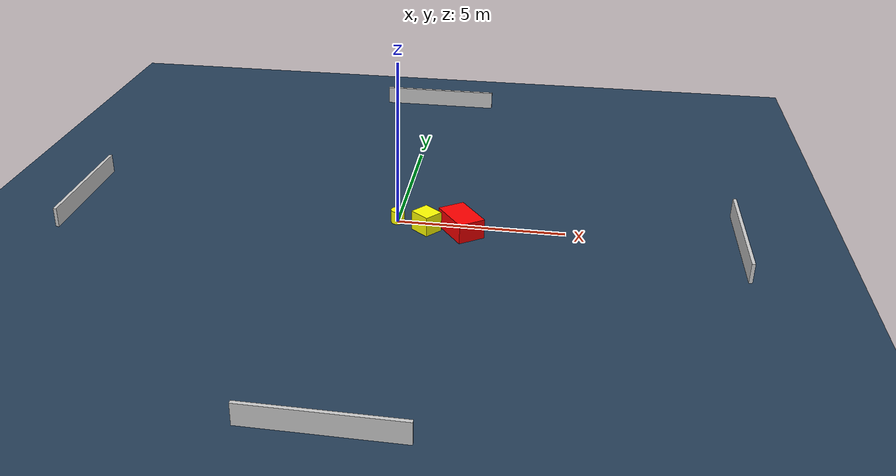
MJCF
<?xml version="1.0" ?>
<mujoco model="generated_environment">
  <option timestep="0.01" integrator="RK4" cone="elliptic"/>
  <default>
    <geom density="1"/>
  </default>
  <asset>
    <texture builtin="gradient" height="3072" name="skybox" rgb1="0.3 0.5 0.7" rgb2="0 0 0" type="skybox" width="512"/>
    <texture builtin="checker" height="300" name="groundplane" rgb1="0.2 0.3 0.4" rgb2="0.1 0.2 0.3" type="2d" width="300"/>
    <material name="groundplane" reflectance="0.2" texrepeat="5 5" texture="groundplane"/>
  </asset>
  <worldbody>
    <light dir="0 0 -1" directional="true" pos="0 0 1.5"/>
    <geom condim="3" friction="0.5 0.005 0.001" material="groundplane" name="floor" pos="0 0 0" size="0 0 0.05" type="plane"/>
    <body name="walls">
      <geom name="wall_1" condim="4" pos="-10.0 0.0 0.3" rgba="0.800000011920929 0.800000011920929 0.800000011920929 1.0" size="0.05 2.0 0.3" type="box"/>
      <geom name="wall_2" condim="4" pos="10.0 0.0 0.3" rgba="0.800000011920929 0.800000011920929 0.800000011920929 1.0" size="0.05 2.0 0.3" type="box"/>
      <geom name="wall_3" condim="4" pos="0.0 -10.0 0.3" rgba="0.800000011920929 0.800000011920929 0.800000011920929 1.0" size="2.0 0.05 0.3" type="box"/>
      <geom name="wall_4" condim="4" pos="0.0 10.0 0.3" rgba="0.800000011920929 0.800000011920929 0.800000011920929 1.0" size="2.0 0.05 0.3" type="box"/>
    </body>
    <body name="robot">
      <joint name="joint_x" type="slide" pos="0 0 0" axis="1 0 0"/>
      <joint name="joint_y" type="slide" pos="0 0 0" axis="0 1 0"/>
      <geom name="robot" type="cylinder" pos="0.0 0.0 0.2" size="0.2 0.2 0.0" mass="5.0" friction="1.0 0.005 0.0001" condim="4" rgba="1.0 1.0 0.0 1.0"/>
    </body>
    <body name="obstacle_1_movable">
      <geom name="obstacle_1_movable" condim="4" pos="0.9259089324539233 -0.3772550225914719 0.3" euler="0 0 50.31737591805599" friction="0.0 0.005 0.001" rgba="1.0 1.0 0.0 1.0" size="0.29787166991952574 0.3255195563398098 0.3" type="box" mass="0.1"/>
      <joint type="free"/>
    </body>
    <body name="obstacle_2_static">
      <geom name="obstacle_2_static" condim="4" pos="1.9536386707839402 -0.33903327977782494 0.3" euler="0 0 305.3557964287909" friction="0.0 0.005 0.001" rgba="1.0 0.0 0.0 1.0" size="0.6388694255632004 0.41588801549719984 0.3" type="box"/>
    </body>
  </worldbody>
  <actuator>
    <motor name="actuator_x" joint="joint_x" gear="1" ctrlrange="-1 1"/>
    <motor name="actuator_y" joint="joint_y" gear="1" ctrlrange="-1 1"/>
  </actuator>
</mujoco>
